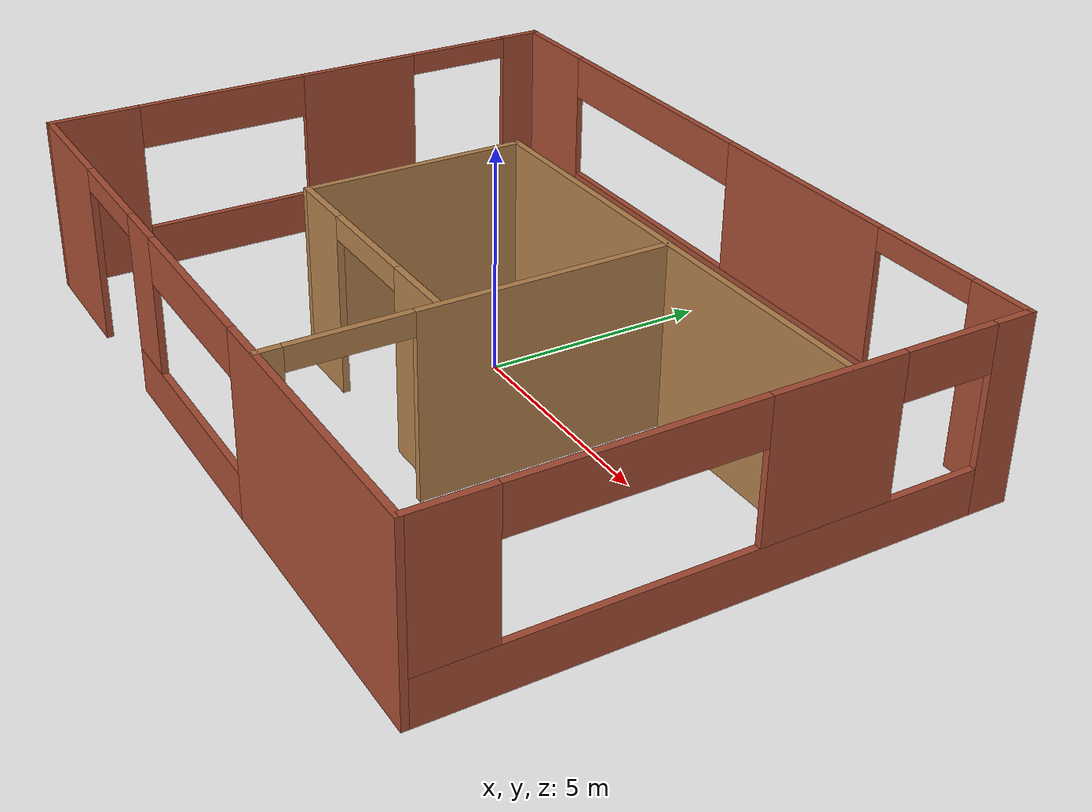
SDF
<?xml version='1.0'?>
<sdf version='1.6'>
  <model name='building'>
    <pose frame=''>0.369 -0.474 0 0 -0 0</pose>
    <link name='Wall_20'>
      <pose frame=''>0 -6.175 0 0 -0 3.14159</pose>
      <visual name='Wall_20_Visual_0'>
        <pose frame=''>-5.30903 0 2 0 -0 0</pose>
        <geometry>
          <box>
            <size>6.38194 0.15 4</size>
          </box>
        </geometry>
        <material>
          <script>
            <uri>file://media/materials/scripts/gazebo.material</uri>
            <name>Gazebo/Bricks</name>
          </script>
          <ambient>0.760784 0.662745 0.627451 1</ambient>
        </material>
        <meta>
          <layer>0</layer>
        </meta>
      </visual>
      <collision name='Wall_20_Collision_0'>
        <geometry>
          <box>
            <size>6.38194 0.15 4</size>
          </box>
        </geometry>
        <pose frame=''>-5.30903 0 2 0 -0 0</pose>
      </collision>
      <visual name='Wall_20_Visual_1'>
        <pose frame=''>7.04482 0 2 0 -0 0</pose>
        <geometry>
          <box>
            <size>2.91037 0.15 4</size>
          </box>
        </geometry>
        <material>
          <script>
            <uri>file://media/materials/scripts/gazebo.material</uri>
            <name>Gazebo/Bricks</name>
          </script>
          <ambient>0.760784 0.662745 0.627451 1</ambient>
        </material>
        <meta>
          <layer>0</layer>
        </meta>
      </visual>
      <collision name='Wall_20_Collision_1'>
        <geometry>
          <box>
            <size>2.91037 0.15 4</size>
          </box>
        </geometry>
        <pose frame=''>7.04482 0 2 0 -0 0</pose>
      </collision>
      <visual name='Wall_20_Visual_2'>
        <pose frame=''>0.485784 0 0.5 0 -0 0</pose>
        <geometry>
          <box>
            <size>5.2077 0.15 1</size>
          </box>
        </geometry>
        <material>
          <script>
            <uri>file://media/materials/scripts/gazebo.material</uri>
            <name>Gazebo/Bricks</name>
          </script>
          <ambient>0.760784 0.662745 0.627451 1</ambient>
        </material>
        <meta>
          <layer>0</layer>
        </meta>
      </visual>
      <collision name='Wall_20_Collision_2'>
        <geometry>
          <box>
            <size>5.2077 0.15 1</size>
          </box>
        </geometry>
        <pose frame=''>0.485784 0 0.5 0 -0 0</pose>
      </collision>
      <visual name='Wall_20_Visual_3'>
        <pose frame=''>2.48578 0 2.5 0 -0 0</pose>
        <geometry>
          <box>
            <size>1.20769 0.15 3</size>
          </box>
        </geometry>
        <material>
          <script>
            <uri>file://media/materials/scripts/gazebo.material</uri>
            <name>Gazebo/Bricks</name>
          </script>
          <ambient>0.760784 0.662745 0.627451 1</ambient>
        </material>
        <meta>
          <layer>0</layer>
        </meta>
      </visual>
      <collision name='Wall_20_Collision_3'>
        <geometry>
          <box>
            <size>1.20769 0.15 3</size>
          </box>
        </geometry>
        <pose frame=''>2.48578 0 2.5 0 -0 0</pose>
      </collision>
      <visual name='Wall_20_Visual_4'>
        <pose frame=''>-0.118063 0 3.5 0 -0 0</pose>
        <geometry>
          <box>
            <size>4 0.15 1</size>
          </box>
        </geometry>
        <material>
          <script>
            <uri>file://media/materials/scripts/gazebo.material</uri>
            <name>Gazebo/Bricks</name>
          </script>
          <ambient>0.760784 0.662745 0.627451 1</ambient>
        </material>
        <meta>
          <layer>0</layer>
        </meta>
      </visual>
      <collision name='Wall_20_Collision_4'>
        <geometry>
          <box>
            <size>4 0.15 1</size>
          </box>
        </geometry>
        <pose frame=''>-0.118063 0 3.5 0 -0 0</pose>
      </collision>
      <visual name='Wall_20_Visual_5'>
        <pose frame=''>4.33963 0 3.75 0 -0 0</pose>
        <geometry>
          <box>
            <size>2.5 0.15 0.5</size>
          </box>
        </geometry>
        <material>
          <script>
            <uri>file://media/materials/scripts/gazebo.material</uri>
            <name>Gazebo/Bricks</name>
          </script>
          <ambient>0.760784 0.662745 0.627451 1</ambient>
        </material>
        <meta>
          <layer>0</layer>
        </meta>
      </visual>
      <collision name='Wall_20_Collision_5'>
        <geometry>
          <box>
            <size>2.5 0.15 0.5</size>
          </box>
        </geometry>
        <pose frame=''>4.33963 0 3.75 0 -0 0</pose>
      </collision>
    </link>
    <link name='Wall_21'>
      <pose frame=''>-8.425 0 0 0 -0 1.5708</pose>
      <visual name='Wall_21_Visual_0'>
        <pose frame=''>-5.20282 0 2 0 -0 0</pose>
        <geometry>
          <box>
            <size>2.09437 0.15 4</size>
          </box>
        </geometry>
        <material>
          <script>
            <uri>file://media/materials/scripts/gazebo.material</uri>
            <name>Gazebo/Bricks</name>
          </script>
          <ambient>0.760784 0.662745 0.627451 1</ambient>
        </material>
        <meta>
          <layer>0</layer>
        </meta>
      </visual>
      <collision name='Wall_21_Collision_0'>
        <geometry>
          <box>
            <size>2.09437 0.15 4</size>
          </box>
        </geometry>
        <pose frame=''>-5.20282 0 2 0 -0 0</pose>
      </collision>
      <visual name='Wall_21_Visual_1'>
        <pose frame=''>5.74619 0 2 0 -0 0</pose>
        <geometry>
          <box>
            <size>1.00762 0.15 4</size>
          </box>
        </geometry>
        <material>
          <script>
            <uri>file://media/materials/scripts/gazebo.material</uri>
            <name>Gazebo/Bricks</name>
          </script>
          <ambient>0.760784 0.662745 0.627451 1</ambient>
        </material>
        <meta>
          <layer>0</layer>
        </meta>
      </visual>
      <collision name='Wall_21_Collision_1'>
        <geometry>
          <box>
            <size>1.00762 0.15 4</size>
          </box>
        </geometry>
        <pose frame=''>5.74619 0 2 0 -0 0</pose>
      </collision>
      <visual name='Wall_21_Visual_2'>
        <pose frame=''>-0.706627 0 0.5 0 -0 0</pose>
        <geometry>
          <box>
            <size>6.89801 0.15 1</size>
          </box>
        </geometry>
        <material>
          <script>
            <uri>file://media/materials/scripts/gazebo.material</uri>
            <name>Gazebo/Bricks</name>
          </script>
          <ambient>0.760784 0.662745 0.627451 1</ambient>
        </material>
        <meta>
          <layer>0</layer>
        </meta>
      </visual>
      <collision name='Wall_21_Collision_2'>
        <geometry>
          <box>
            <size>6.89801 0.15 1</size>
          </box>
        </geometry>
        <pose frame=''>-0.706627 0 0.5 0 -0 0</pose>
      </collision>
      <visual name='Wall_21_Visual_3'>
        <pose frame=''>1.29337 0 2.5 0 -0 0</pose>
        <geometry>
          <box>
            <size>2.89801 0.15 3</size>
          </box>
        </geometry>
        <material>
          <script>
            <uri>file://media/materials/scripts/gazebo.material</uri>
            <name>Gazebo/Bricks</name>
          </script>
          <ambient>0.760784 0.662745 0.627451 1</ambient>
        </material>
        <meta>
          <layer>0</layer>
        </meta>
      </visual>
      <collision name='Wall_21_Collision_3'>
        <geometry>
          <box>
            <size>2.89801 0.15 3</size>
          </box>
        </geometry>
        <pose frame=''>1.29337 0 2.5 0 -0 0</pose>
      </collision>
      <visual name='Wall_21_Visual_4'>
        <pose frame=''>-2.15563 0 3.5 0 -0 0</pose>
        <geometry>
          <box>
            <size>4 0.15 1</size>
          </box>
        </geometry>
        <material>
          <script>
            <uri>file://media/materials/scripts/gazebo.material</uri>
            <name>Gazebo/Bricks</name>
          </script>
          <ambient>0.760784 0.662745 0.627451 1</ambient>
        </material>
        <meta>
          <layer>0</layer>
        </meta>
      </visual>
      <collision name='Wall_21_Collision_4'>
        <geometry>
          <box>
            <size>4 0.15 1</size>
          </box>
        </geometry>
        <pose frame=''>-2.15563 0 3.5 0 -0 0</pose>
      </collision>
      <visual name='Wall_21_Visual_5'>
        <pose frame=''>3.99238 0 3.75 0 -0 0</pose>
        <geometry>
          <box>
            <size>2.5 0.15 0.5</size>
          </box>
        </geometry>
        <material>
          <script>
            <uri>file://media/materials/scripts/gazebo.material</uri>
            <name>Gazebo/Bricks</name>
          </script>
          <ambient>0.760784 0.662745 0.627451 1</ambient>
        </material>
        <meta>
          <layer>0</layer>
        </meta>
      </visual>
      <collision name='Wall_21_Collision_5'>
        <geometry>
          <box>
            <size>2.5 0.15 0.5</size>
          </box>
        </geometry>
        <pose frame=''>3.99238 0 3.75 0 -0 0</pose>
      </collision>
    </link>
    <link name='Wall_22'>
      <pose frame=''>0 6.175 0 0 -0 0</pose>
      <visual name='Wall_22_Visual_0'>
        <pose frame=''>-7.35376 0 2 0 -0 0</pose>
        <geometry>
          <box>
            <size>2.29248 0.15 4</size>
          </box>
        </geometry>
        <material>
          <script>
            <uri>file://media/materials/scripts/gazebo.material</uri>
            <name>Gazebo/Bricks</name>
          </script>
          <ambient>0.760784 0.662745 0.627451 1</ambient>
        </material>
        <meta>
          <layer>0</layer>
        </meta>
      </visual>
      <collision name='Wall_22_Collision_0'>
        <geometry>
          <box>
            <size>2.29248 0.15 4</size>
          </box>
        </geometry>
        <pose frame=''>-7.35376 0 2 0 -0 0</pose>
      </collision>
      <visual name='Wall_22_Visual_1'>
        <pose frame=''>7.77696 0 2 0 -0 0</pose>
        <geometry>
          <box>
            <size>1.44607 0.15 4</size>
          </box>
        </geometry>
        <material>
          <script>
            <uri>file://media/materials/scripts/gazebo.material</uri>
            <name>Gazebo/Bricks</name>
          </script>
          <ambient>0.760784 0.662745 0.627451 1</ambient>
        </material>
        <meta>
          <layer>0</layer>
        </meta>
      </visual>
      <collision name='Wall_22_Collision_1'>
        <geometry>
          <box>
            <size>1.44607 0.15 4</size>
          </box>
        </geometry>
        <pose frame=''>7.77696 0 2 0 -0 0</pose>
      </collision>
      <visual name='Wall_22_Visual_2'>
        <pose frame=''>-0.826797 0 0.5 0 -0 0</pose>
        <geometry>
          <box>
            <size>10.7614 0.15 1</size>
          </box>
        </geometry>
        <material>
          <script>
            <uri>file://media/materials/scripts/gazebo.material</uri>
            <name>Gazebo/Bricks</name>
          </script>
          <ambient>0.760784 0.662745 0.627451 1</ambient>
        </material>
        <meta>
          <layer>0</layer>
        </meta>
      </visual>
      <collision name='Wall_22_Collision_2'>
        <geometry>
          <box>
            <size>10.7614 0.15 1</size>
          </box>
        </geometry>
        <pose frame=''>-0.826797 0 0.5 0 -0 0</pose>
      </collision>
      <visual name='Wall_22_Visual_3'>
        <pose frame=''>2.1732 0 2.5 0 -0 0</pose>
        <geometry>
          <box>
            <size>4.76144 0.15 3</size>
          </box>
        </geometry>
        <material>
          <script>
            <uri>file://media/materials/scripts/gazebo.material</uri>
            <name>Gazebo/Bricks</name>
          </script>
          <ambient>0.760784 0.662745 0.627451 1</ambient>
        </material>
        <meta>
          <layer>0</layer>
        </meta>
      </visual>
      <collision name='Wall_22_Collision_3'>
        <geometry>
          <box>
            <size>4.76144 0.15 3</size>
          </box>
        </geometry>
        <pose frame=''>2.1732 0 2.5 0 -0 0</pose>
      </collision>
      <visual name='Wall_22_Visual_4'>
        <pose frame=''>-3.20752 0 3.5 0 -0 0</pose>
        <geometry>
          <box>
            <size>6 0.15 1</size>
          </box>
        </geometry>
        <material>
          <script>
            <uri>file://media/materials/scripts/gazebo.material</uri>
            <name>Gazebo/Bricks</name>
          </script>
          <ambient>0.760784 0.662745 0.627451 1</ambient>
        </material>
        <meta>
          <layer>0</layer>
        </meta>
      </visual>
      <collision name='Wall_22_Collision_4'>
        <geometry>
          <box>
            <size>6 0.15 1</size>
          </box>
        </geometry>
        <pose frame=''>-3.20752 0 3.5 0 -0 0</pose>
      </collision>
      <visual name='Wall_22_Visual_5'>
        <pose frame=''>5.80392 0 3.75 0 -0 0</pose>
        <geometry>
          <box>
            <size>2.5 0.15 0.5</size>
          </box>
        </geometry>
        <material>
          <script>
            <uri>file://media/materials/scripts/gazebo.material</uri>
            <name>Gazebo/Bricks</name>
          </script>
          <ambient>0.760784 0.662745 0.627451 1</ambient>
        </material>
        <meta>
          <layer>0</layer>
        </meta>
      </visual>
      <collision name='Wall_22_Collision_5'>
        <geometry>
          <box>
            <size>2.5 0.15 0.5</size>
          </box>
        </geometry>
        <pose frame=''>5.80392 0 3.75 0 -0 0</pose>
      </collision>
    </link>
    <link name='Wall_23'>
      <pose frame=''>8.425 0 0 0 0 -1.5708</pose>
      <visual name='Wall_23_Visual_0'>
        <pose frame=''>-5.80201 0 2 0 -0 0</pose>
        <geometry>
          <box>
            <size>0.895982 0.15 4</size>
          </box>
        </geometry>
        <material>
          <script>
            <uri>file://media/materials/scripts/gazebo.material</uri>
            <name>Gazebo/Bricks</name>
          </script>
          <ambient>0.760784 0.662745 0.627451 1</ambient>
        </material>
        <meta>
          <layer>0</layer>
        </meta>
      </visual>
      <collision name='Wall_23_Collision_0'>
        <geometry>
          <box>
            <size>0.895982 0.15 4</size>
          </box>
        </geometry>
        <pose frame=''>-5.80201 0 2 0 -0 0</pose>
      </collision>
      <visual name='Wall_23_Visual_1'>
        <pose frame=''>0.447991 0 0.5 0 -0 0</pose>
        <geometry>
          <box>
            <size>11.604 0.15 1</size>
          </box>
        </geometry>
        <material>
          <script>
            <uri>file://media/materials/scripts/gazebo.material</uri>
            <name>Gazebo/Bricks</name>
          </script>
          <ambient>0.760784 0.662745 0.627451 1</ambient>
        </material>
        <meta>
          <layer>0</layer>
        </meta>
      </visual>
      <collision name='Wall_23_Collision_1'>
        <geometry>
          <box>
            <size>11.604 0.15 1</size>
          </box>
        </geometry>
        <pose frame=''>0.447991 0 0.5 0 -0 0</pose>
      </collision>
      <visual name='Wall_23_Visual_2'>
        <pose frame=''>-1.93823 0 2.5 0 -0 0</pose>
        <geometry>
          <box>
            <size>2.83158 0.15 3</size>
          </box>
        </geometry>
        <material>
          <script>
            <uri>file://media/materials/scripts/gazebo.material</uri>
            <name>Gazebo/Bricks</name>
          </script>
          <ambient>0.760784 0.662745 0.627451 1</ambient>
        </material>
        <meta>
          <layer>0</layer>
        </meta>
      </visual>
      <collision name='Wall_23_Collision_2'>
        <geometry>
          <box>
            <size>2.83158 0.15 3</size>
          </box>
        </geometry>
        <pose frame=''>-1.93823 0 2.5 0 -0 0</pose>
      </collision>
      <visual name='Wall_23_Visual_3'>
        <pose frame=''>5.36378 0 2.5 0 -0 0</pose>
        <geometry>
          <box>
            <size>1.77244 0.15 3</size>
          </box>
        </geometry>
        <material>
          <script>
            <uri>file://media/materials/scripts/gazebo.material</uri>
            <name>Gazebo/Bricks</name>
          </script>
          <ambient>0.760784 0.662745 0.627451 1</ambient>
        </material>
        <meta>
          <layer>0</layer>
        </meta>
      </visual>
      <collision name='Wall_23_Collision_3'>
        <geometry>
          <box>
            <size>1.77244 0.15 3</size>
          </box>
        </geometry>
        <pose frame=''>5.36378 0 2.5 0 -0 0</pose>
      </collision>
      <visual name='Wall_23_Visual_4'>
        <pose frame=''>-4.35402 0 3.5 0 -0 0</pose>
        <geometry>
          <box>
            <size>2 0.15 1</size>
          </box>
        </geometry>
        <material>
          <script>
            <uri>file://media/materials/scripts/gazebo.material</uri>
            <name>Gazebo/Bricks</name>
          </script>
          <ambient>0.760784 0.662745 0.627451 1</ambient>
        </material>
        <meta>
          <layer>0</layer>
        </meta>
      </visual>
      <collision name='Wall_23_Collision_4'>
        <geometry>
          <box>
            <size>2 0.15 1</size>
          </box>
        </geometry>
        <pose frame=''>-4.35402 0 3.5 0 -0 0</pose>
      </collision>
      <visual name='Wall_23_Visual_5'>
        <pose frame=''>1.97756 0 3.5 0 -0 0</pose>
        <geometry>
          <box>
            <size>5 0.15 1</size>
          </box>
        </geometry>
        <material>
          <script>
            <uri>file://media/materials/scripts/gazebo.material</uri>
            <name>Gazebo/Bricks</name>
          </script>
          <ambient>0.760784 0.662745 0.627451 1</ambient>
        </material>
        <meta>
          <layer>0</layer>
        </meta>
      </visual>
      <collision name='Wall_23_Collision_5'>
        <geometry>
          <box>
            <size>5 0.15 1</size>
          </box>
        </geometry>
        <pose frame=''>1.97756 0 3.5 0 -0 0</pose>
      </collision>
    </link>
    <link name='Wall_25'>
      <collision name='Wall_25_Collision'>
        <geometry>
          <box>
            <size>11 0.15 4</size>
          </box>
        </geometry>
        <pose frame=''>0 0 2 0 -0 0</pose>
      </collision>
      <visual name='Wall_25_Visual'>
        <pose frame=''>0 0 2 0 -0 0</pose>
        <geometry>
          <box>
            <size>11 0.15 4</size>
          </box>
        </geometry>
        <material>
          <script>
            <uri>file://media/materials/scripts/gazebo.material</uri>
            <name>Gazebo/Wood</name>
          </script>
          <ambient>0.921569 0.807843 0.615686 1</ambient>
        </material>
        <meta>
          <layer>0</layer>
        </meta>
      </visual>
      <pose frame=''>2.954 2.205 0 0 -0 3.14159</pose>
    </link>
    <link name='Wall_26'>
      <collision name='Wall_26_Collision'>
        <geometry>
          <box>
            <size>5.02707 0.15 4</size>
          </box>
        </geometry>
        <pose frame=''>0 0 2 0 -0 0</pose>
      </collision>
      <visual name='Wall_26_Visual'>
        <pose frame=''>0 0 2 0 -0 0</pose>
        <geometry>
          <box>
            <size>5.02707 0.15 4</size>
          </box>
        </geometry>
        <material>
          <script>
            <uri>file://media/materials/scripts/gazebo.material</uri>
            <name>Gazebo/Wood</name>
          </script>
          <ambient>0.921569 0.807843 0.615686 1</ambient>
        </material>
        <meta>
          <layer>0</layer>
        </meta>
      </visual>
      <pose frame=''>-2.471 -0.2335 0 0 0 -1.5708</pose>
    </link>
    <link name='Wall_27'>
      <pose frame=''>0.329 -2.672 0 0 -0 0</pose>
      <visual name='Wall_27_Visual_0'>
        <pose frame=''>-2.10196 0 2 0 -0 0</pose>
        <geometry>
          <box>
            <size>1.54607 0.15 4</size>
          </box>
        </geometry>
        <material>
          <script>
            <uri>file://media/materials/scripts/gazebo.material</uri>
            <name>Gazebo/Wood</name>
          </script>
          <ambient>0.921569 0.807843 0.615686 1</ambient>
        </material>
        <meta>
          <layer>0</layer>
        </meta>
      </visual>
      <collision name='Wall_27_Collision_0'>
        <geometry>
          <box>
            <size>1.54607 0.15 4</size>
          </box>
        </geometry>
        <pose frame=''>-2.10196 0 2 0 -0 0</pose>
      </collision>
      <visual name='Wall_27_Visual_1'>
        <pose frame=''>2.02304 0 2 0 -0 0</pose>
        <geometry>
          <box>
            <size>1.70393 0.15 4</size>
          </box>
        </geometry>
        <material>
          <script>
            <uri>file://media/materials/scripts/gazebo.material</uri>
            <name>Gazebo/Wood</name>
          </script>
          <ambient>0.921569 0.807843 0.615686 1</ambient>
        </material>
        <meta>
          <layer>0</layer>
        </meta>
      </visual>
      <collision name='Wall_27_Collision_1'>
        <geometry>
          <box>
            <size>1.70393 0.15 4</size>
          </box>
        </geometry>
        <pose frame=''>2.02304 0 2 0 -0 0</pose>
      </collision>
      <visual name='Wall_27_Visual_2'>
        <pose frame=''>-0.078929 0 3.75 0 -0 0</pose>
        <geometry>
          <box>
            <size>2.5 0.15 0.5</size>
          </box>
        </geometry>
        <material>
          <script>
            <uri>file://media/materials/scripts/gazebo.material</uri>
            <name>Gazebo/Wood</name>
          </script>
          <ambient>0.921569 0.807843 0.615686 1</ambient>
        </material>
        <meta>
          <layer>0</layer>
        </meta>
      </visual>
      <collision name='Wall_27_Collision_2'>
        <geometry>
          <box>
            <size>2.5 0.15 0.5</size>
          </box>
        </geometry>
        <pose frame=''>-0.078929 0 3.75 0 -0 0</pose>
      </collision>
    </link>
    <link name='Wall_29'>
      <pose frame=''>3.143 -1.962 0 0 0 -1.5708</pose>
      <visual name='Wall_29_Visual_0'>
        <pose frame=''>-1.52092 0 2 0 -0 0</pose>
        <geometry>
          <box>
            <size>5.45816 0.15 4</size>
          </box>
        </geometry>
        <material>
          <script>
            <uri>file://media/materials/scripts/gazebo.material</uri>
            <name>Gazebo/Wood</name>
          </script>
          <ambient>0.921569 0.807843 0.615686 1</ambient>
        </material>
        <meta>
          <layer>0</layer>
        </meta>
      </visual>
      <collision name='Wall_29_Collision_0'>
        <geometry>
          <box>
            <size>5.45816 0.15 4</size>
          </box>
        </geometry>
        <pose frame=''>-1.52092 0 2 0 -0 0</pose>
      </collision>
      <visual name='Wall_29_Visual_1'>
        <pose frame=''>3.97908 0 2 0 -0 0</pose>
        <geometry>
          <box>
            <size>0.541837 0.15 4</size>
          </box>
        </geometry>
        <material>
          <script>
            <uri>file://media/materials/scripts/gazebo.material</uri>
            <name>Gazebo/Wood</name>
          </script>
          <ambient>0.921569 0.807843 0.615686 1</ambient>
        </material>
        <meta>
          <layer>0</layer>
        </meta>
      </visual>
      <collision name='Wall_29_Collision_1'>
        <geometry>
          <box>
            <size>0.541837 0.15 4</size>
          </box>
        </geometry>
        <pose frame=''>3.97908 0 2 0 -0 0</pose>
      </collision>
      <visual name='Wall_29_Visual_2'>
        <pose frame=''>2.45816 0 3.75 0 -0 0</pose>
        <geometry>
          <box>
            <size>2.5 0.15 0.5</size>
          </box>
        </geometry>
        <material>
          <script>
            <uri>file://media/materials/scripts/gazebo.material</uri>
            <name>Gazebo/Wood</name>
          </script>
          <ambient>0.921569 0.807843 0.615686 1</ambient>
        </material>
        <meta>
          <layer>0</layer>
        </meta>
      </visual>
      <collision name='Wall_29_Collision_2'>
        <geometry>
          <box>
            <size>2.5 0.15 0.5</size>
          </box>
        </geometry>
        <pose frame=''>2.45816 0 3.75 0 -0 0</pose>
      </collision>
    </link>
    <static>1</static>
  </model>
</sdf>
